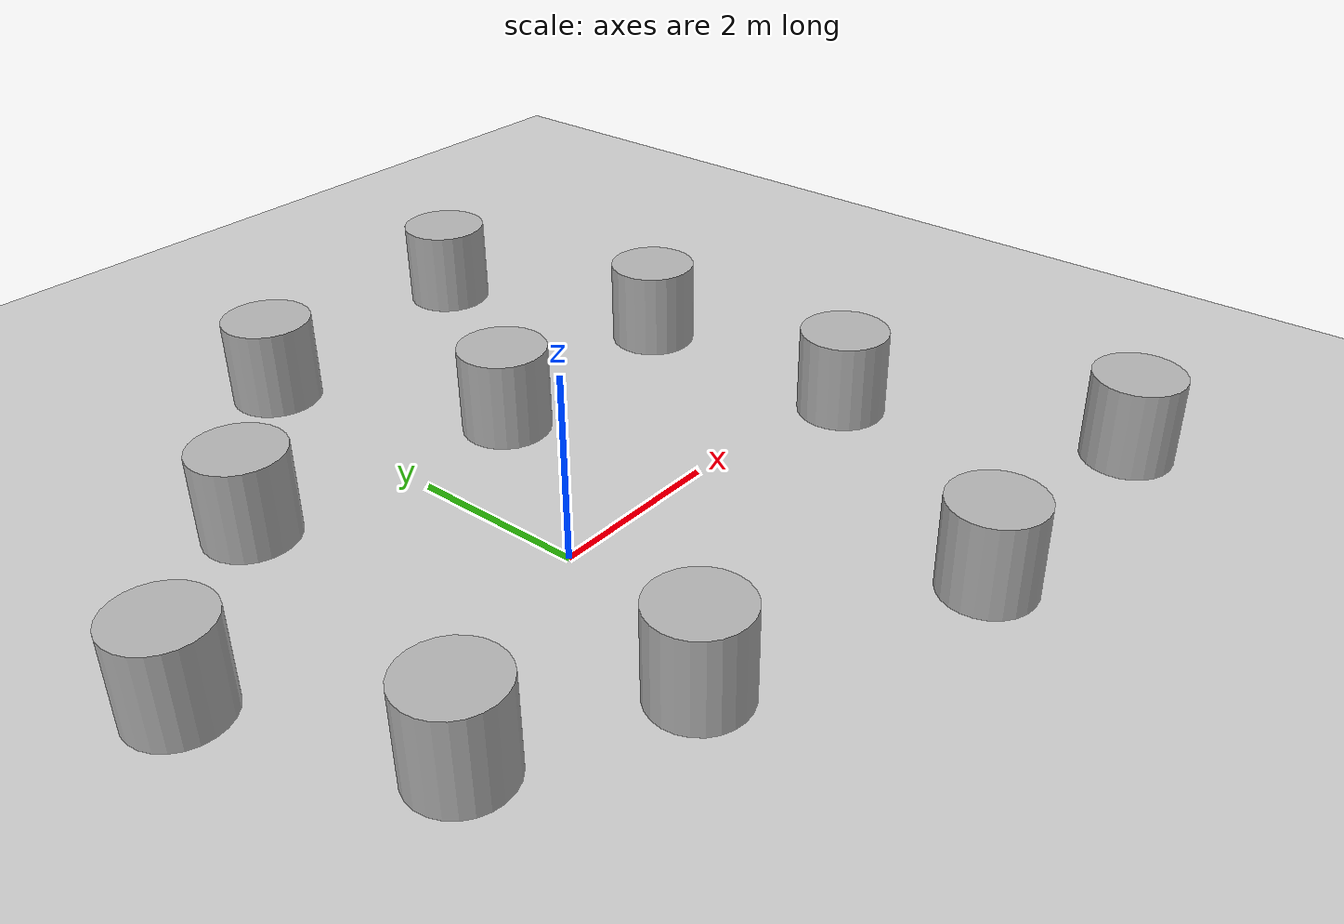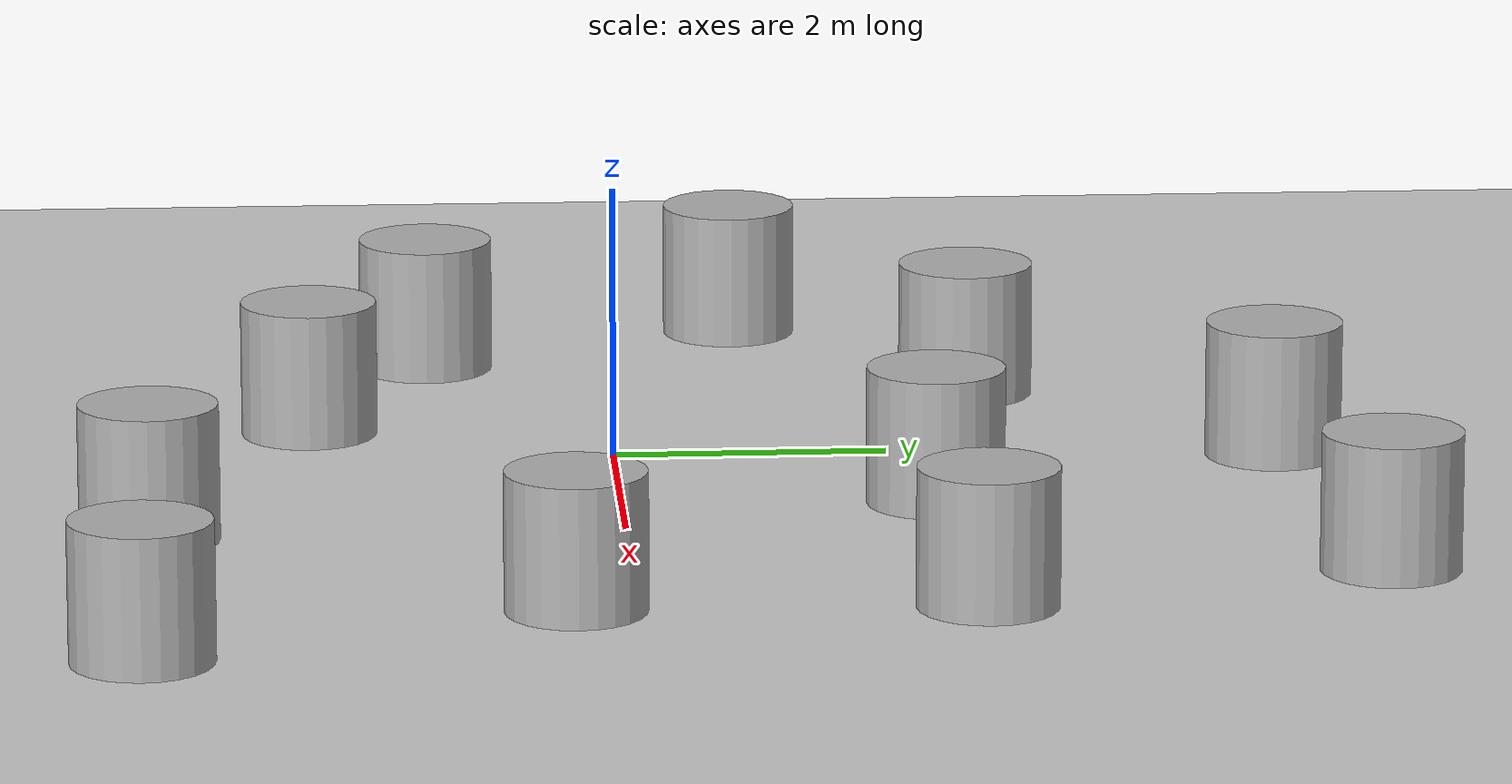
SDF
<sdf version='1.10'>
  <world name='empty'>
    <physics name='1ms' type='ignored'>
      <max_step_size>0.001</max_step_size>
      <real_time_factor>1</real_time_factor>
      <real_time_update_rate>1000</real_time_update_rate>
    </physics>
    <plugin name='gz::sim::systems::Physics' filename='gz-sim-physics-system'/>
    <plugin name='gz::sim::systems::UserCommands' filename='gz-sim-user-commands-system'/>
    <plugin name='gz::sim::systems::SceneBroadcaster' filename='gz-sim-scene-broadcaster-system'/>
    <plugin name='gz::sim::systems::Contact' filename='gz-sim-contact-system'/>
    <plugin
        filename="gz-sim-sensors-system"
        name="gz::sim::systems::Sensors">
        <render_engine>ogre2</render_engine>
    </plugin>
    <gravity>0 0 -9.8000000000000007</gravity>
    <magnetic_field>5.5644999999999998e-06 2.2875799999999999e-05 -4.2388400000000002e-05</magnetic_field>
    <atmosphere type='adiabatic'/>
    <scene>
      <ambient>0.400000006 0.400000006 0.400000006 1</ambient>
      <background>0.699999988 0.699999988 0.699999988 1</background>
      <shadows>true</shadows>
    </scene>
    <model name='ground_plane'>
      <static>true</static>
      <link name='link'>
        <collision name='collision'>
          <geometry>
            <plane>
              <normal>0 0 1</normal>
              <size>100 100</size>
            </plane>
          </geometry>
          <surface>
            <friction>
              <ode/>
            </friction>
            <bounce/>
            <contact/>
          </surface>
        </collision>
        <visual name='visual'>
          <geometry>
            <plane>
              <normal>0 0 1</normal>
              <size>100 100</size>
            </plane>
          </geometry>
          <material>
            <ambient>0.800000012 0.800000012 0.800000012 1</ambient>
            <diffuse>0.800000012 0.800000012 0.800000012 1</diffuse>
            <specular>0.800000012 0.800000012 0.800000012 1</specular>
          </material>
        </visual>
        <pose>0 0 0 0 0 0</pose>
        <inertial>
          <pose>0 0 0 0 0 0</pose>
          <mass>1</mass>
          <inertia>
            <ixx>1</ixx>
            <ixy>0</ixy>
            <ixz>0</ixz>
            <iyy>1</iyy>
            <iyz>0</iyz>
            <izz>1</izz>
          </inertia>
        </inertial>
        <enable_wind>false</enable_wind>
      </link>
      <pose>0 0 0 0 0 0</pose>
      <self_collide>false</self_collide>
    </model>
    <model name='cylinder'>
      <pose>1.4097583559887079 2.2545643272501117 0.49999942638036005 4.9404971558891165e-19 3.2842362917263924e-20 2.3601329363367555e-20</pose>
      <link name='cylinder_link'>
        <inertial>
          <inertia>
            <ixx>0.14580000000000001</ixx>
            <ixy>0</ixy>
            <ixz>0</ixz>
            <iyy>0.14580000000000001</iyy>
            <iyz>0</iyz>
            <izz>0.125</izz>
          </inertia>
          <mass>1</mass>
          <pose>0 0 0 0 0 0</pose>
        </inertial>
        <collision name='cylinder_collision'>
          <geometry>
            <cylinder>
              <radius>0.5</radius>
              <length>1</length>
            </cylinder>
          </geometry>
          <surface>
            <friction>
              <ode/>
            </friction>
            <bounce/>
            <contact/>
          </surface>
        </collision>
        <visual name='cylinder_visual'>
          <geometry>
            <cylinder>
              <radius>0.5</radius>
              <length>1</length>
            </cylinder>
          </geometry>
          <material>
            <ambient>0.300000012 0.300000012 0.300000012 1</ambient>
            <diffuse>0.699999988 0.699999988 0.699999988 1</diffuse>
            <specular>1 1 1 1</specular>
          </material>
        </visual>
        <pose>0 0 0 0 0 0</pose>
        <enable_wind>false</enable_wind>
      </link>
      <static>false</static>
      <self_collide>false</self_collide>
    </model>
    <model name='cylinder_1'>
      <pose>4.0812948099859918 -0.4316160783085512 0.49999899681693183 4.9776349463662298e-19 3.1707919493355166e-20 2.4020687589732746e-20</pose>
      <link name='cylinder_link'>
        <inertial>
          <inertia>
            <ixx>0.14580000000000001</ixx>
            <ixy>0</ixy>
            <ixz>0</ixz>
            <iyy>0.14580000000000001</iyy>
            <iyz>0</iyz>
            <izz>0.125</izz>
          </inertia>
          <mass>1</mass>
        </inertial>
        <collision name='cylinder_collision'>
          <geometry>
            <cylinder>
              <radius>0.5</radius>
              <length>1</length>
            </cylinder>
          </geometry>
          <surface>
            <friction>
              <ode/>
            </friction>
            <bounce/>
            <contact/>
          </surface>
        </collision>
        <visual name='cylinder_visual'>
          <geometry>
            <cylinder>
              <radius>0.5</radius>
              <length>1</length>
            </cylinder>
          </geometry>
          <material>
            <ambient>0.300000012 0.300000012 0.300000012 1</ambient>
            <diffuse>0.699999988 0.699999988 0.699999988 1</diffuse>
            <specular>1 1 1 1</specular>
          </material>
        </visual>
      </link>
      <static>false</static>
      <self_collide>false</self_collide>
    </model>
    <model name='cylinder_2'>
      <pose>2.1077101061374517 -3.3759233407375318 0.49999899681693183 4.9491400319432503e-19 3.166873458593085e-20 2.3245465311377148e-20</pose>
      <link name='cylinder_link'>
        <inertial>
          <inertia>
            <ixx>0.14580000000000001</ixx>
            <ixy>0</ixy>
            <ixz>0</ixz>
            <iyy>0.14580000000000001</iyy>
            <iyz>0</iyz>
            <izz>0.125</izz>
          </inertia>
          <mass>1</mass>
        </inertial>
        <collision name='cylinder_collision'>
          <geometry>
            <cylinder>
              <radius>0.5</radius>
              <length>1</length>
            </cylinder>
          </geometry>
          <surface>
            <friction>
              <ode/>
            </friction>
            <bounce/>
            <contact/>
          </surface>
        </collision>
        <visual name='cylinder_visual'>
          <geometry>
            <cylinder>
              <radius>0.5</radius>
              <length>1</length>
            </cylinder>
          </geometry>
          <material>
            <ambient>0.300000012 0.300000012 0.300000012 1</ambient>
            <diffuse>0.699999988 0.699999988 0.699999988 1</diffuse>
            <specular>1 1 1 1</specular>
          </material>
        </visual>
      </link>
      <static>false</static>
      <self_collide>false</self_collide>
    </model>
    <model name='cylinder_3'>
      <pose>4.1337470431676007 2.407088842674566 0.49999899681693183 4.9343917066988518e-19 3.2061877619412711e-20 2.3516433377538193e-20</pose>
      <link name='cylinder_link'>
        <inertial>
          <inertia>
            <ixx>0.14580000000000001</ixx>
            <ixy>0</ixy>
            <ixz>0</ixz>
            <iyy>0.14580000000000001</iyy>
            <iyz>0</iyz>
            <izz>0.125</izz>
          </inertia>
          <mass>1</mass>
        </inertial>
        <collision name='cylinder_collision'>
          <geometry>
            <cylinder>
              <radius>0.5</radius>
              <length>1</length>
            </cylinder>
          </geometry>
          <surface>
            <friction>
              <ode/>
            </friction>
            <bounce/>
            <contact/>
          </surface>
        </collision>
        <visual name='cylinder_visual'>
          <geometry>
            <cylinder>
              <radius>0.5</radius>
              <length>1</length>
            </cylinder>
          </geometry>
          <material>
            <ambient>0.300000012 0.300000012 0.300000012 1</ambient>
            <diffuse>0.699999988 0.699999988 0.699999988 1</diffuse>
            <specular>1 1 1 1</specular>
          </material>
        </visual>
      </link>
      <static>false</static>
      <self_collide>false</self_collide>
    </model>
    <model name='cylinder_4'>
      <pose>-0.77144733581485259 -2.2162703523065397 0.49999899681693183 4.9720080285983906e-19 3.6419521995058447e-20 2.3895061857896547e-20</pose>
      <link name='cylinder_link'>
        <inertial>
          <inertia>
            <ixx>0.14580000000000001</ixx>
            <ixy>0</ixy>
            <ixz>0</ixz>
            <iyy>0.14580000000000001</iyy>
            <iyz>0</iyz>
            <izz>0.125</izz>
          </inertia>
          <mass>1</mass>
        </inertial>
        <collision name='cylinder_collision'>
          <geometry>
            <cylinder>
              <radius>0.5</radius>
              <length>1</length>
            </cylinder>
          </geometry>
          <surface>
            <friction>
              <ode/>
            </friction>
            <bounce/>
            <contact/>
          </surface>
        </collision>
        <visual name='cylinder_visual'>
          <geometry>
            <cylinder>
              <radius>0.5</radius>
              <length>1</length>
            </cylinder>
          </geometry>
          <material>
            <ambient>0.300000012 0.300000012 0.300000012 1</ambient>
            <diffuse>0.699999988 0.699999988 0.699999988 1</diffuse>
            <specular>1 1 1 1</specular>
          </material>
        </visual>
      </link>
      <static>false</static>
      <self_collide>false</self_collide>
    </model>
    <model name='cylinder_5'>
      <pose>-1.6794210920380568 2.713009257292105 0.49999899681693183 4.9847478699209447e-19 3.8144123835269822e-20 2.3499636734322745e-20</pose>
      <link name='cylinder_link'>
        <inertial>
          <inertia>
            <ixx>0.14580000000000001</ixx>
            <ixy>0</ixy>
            <ixz>0</ixz>
            <iyy>0.14580000000000001</iyy>
            <iyz>0</iyz>
            <izz>0.125</izz>
          </inertia>
          <mass>1</mass>
        </inertial>
        <collision name='cylinder_collision'>
          <geometry>
            <cylinder>
              <radius>0.5</radius>
              <length>1</length>
            </cylinder>
          </geometry>
          <surface>
            <friction>
              <ode/>
            </friction>
            <bounce/>
            <contact/>
          </surface>
        </collision>
        <visual name='cylinder_visual'>
          <geometry>
            <cylinder>
              <radius>0.5</radius>
              <length>1</length>
            </cylinder>
          </geometry>
          <material>
            <ambient>0.300000012 0.300000012 0.300000012 1</ambient>
            <diffuse>0.699999988 0.699999988 0.699999988 1</diffuse>
            <specular>1 1 1 1</specular>
          </material>
        </visual>
      </link>
      <static>false</static>
      <self_collide>false</self_collide>
    </model>
    <model name='cylinder_6'>
      <pose>0.23132474116762136 4.8237613028387845 0.49999899681693183 4.9615736631856206e-19 3.4870860628414806e-20 2.3630326489104077e-20</pose>
      <link name='cylinder_link'>
        <inertial>
          <inertia>
            <ixx>0.14580000000000001</ixx>
            <ixy>0</ixy>
            <ixz>0</ixz>
            <iyy>0.14580000000000001</iyy>
            <iyz>0</iyz>
            <izz>0.125</izz>
          </inertia>
          <mass>1</mass>
        </inertial>
        <collision name='cylinder_collision'>
          <geometry>
            <cylinder>
              <radius>0.5</radius>
              <length>1</length>
            </cylinder>
          </geometry>
          <surface>
            <friction>
              <ode/>
            </friction>
            <bounce/>
            <contact/>
          </surface>
        </collision>
        <visual name='cylinder_visual'>
          <geometry>
            <cylinder>
              <radius>0.5</radius>
              <length>1</length>
            </cylinder>
          </geometry>
          <material>
            <ambient>0.300000012 0.300000012 0.300000012 1</ambient>
            <diffuse>0.699999988 0.699999988 0.699999988 1</diffuse>
            <specular>1 1 1 1</specular>
          </material>
        </visual>
      </link>
      <static>false</static>
      <self_collide>false</self_collide>
    </model>
    <model name='cylinder_7'>
      <pose>-2.6585594167937097 -1.315054147716205 0.49999899681693183 4.9262158160818284e-19 3.5012485188522025e-20 2.2605167035218861e-20</pose>
      <link name='cylinder_link'>
        <inertial>
          <inertia>
            <ixx>0.14580000000000001</ixx>
            <ixy>0</ixy>
            <ixz>0</ixz>
            <iyy>0.14580000000000001</iyy>
            <iyz>0</iyz>
            <izz>0.125</izz>
          </inertia>
          <mass>1</mass>
        </inertial>
        <collision name='cylinder_collision'>
          <geometry>
            <cylinder>
              <radius>0.5</radius>
              <length>1</length>
            </cylinder>
          </geometry>
          <surface>
            <friction>
              <ode/>
            </friction>
            <bounce/>
            <contact/>
          </surface>
        </collision>
        <visual name='cylinder_visual'>
          <geometry>
            <cylinder>
              <radius>0.5</radius>
              <length>1</length>
            </cylinder>
          </geometry>
          <material>
            <ambient>0.300000012 0.300000012 0.300000012 1</ambient>
            <diffuse>0.699999988 0.699999988 0.699999988 1</diffuse>
            <specular>1 1 1 1</specular>
          </material>
        </visual>
      </link>
      <static>false</static>
      <self_collide>false</self_collide>
    </model>
    <model name='cylinder_8'>
      <pose>5.1600856329679479 -3.4035977194989542 0.49999899681693183 4.9500504892319191e-19 2.8126597753188178e-20 2.3408793794174591e-20</pose>
      <link name='cylinder_link'>
        <inertial>
          <inertia>
            <ixx>0.14580000000000001</ixx>
            <ixy>0</ixy>
            <ixz>0</ixz>
            <iyy>0.14580000000000001</iyy>
            <iyz>0</iyz>
            <izz>0.125</izz>
          </inertia>
          <mass>1</mass>
        </inertial>
        <collision name='cylinder_collision'>
          <geometry>
            <cylinder>
              <radius>0.5</radius>
              <length>1</length>
            </cylinder>
          </geometry>
          <surface>
            <friction>
              <ode/>
            </friction>
            <bounce/>
            <contact/>
          </surface>
        </collision>
        <visual name='cylinder_visual'>
          <geometry>
            <cylinder>
              <radius>0.5</radius>
              <length>1</length>
            </cylinder>
          </geometry>
          <material>
            <ambient>0.300000012 0.300000012 0.300000012 1</ambient>
            <diffuse>0.699999988 0.699999988 0.699999988 1</diffuse>
            <specular>1 1 1 1</specular>
          </material>
        </visual>
      </link>
      <static>false</static>
      <self_collide>false</self_collide>
    </model>
    <model name='cylinder_9'>
      <pose>-3.6322871232884739 1.0395804837576712 0.49999899681693183 4.992614063664483e-19 3.4844889520148727e-20 2.2428818240099895e-20</pose>
      <link name='cylinder_link'>
        <inertial>
          <inertia>
            <ixx>0.14580000000000001</ixx>
            <ixy>0</ixy>
            <ixz>0</ixz>
            <iyy>0.14580000000000001</iyy>
            <iyz>0</iyz>
            <izz>0.125</izz>
          </inertia>
          <mass>1</mass>
        </inertial>
        <collision name='cylinder_collision'>
          <geometry>
            <cylinder>
              <radius>0.5</radius>
              <length>1</length>
            </cylinder>
          </geometry>
          <surface>
            <friction>
              <ode/>
            </friction>
            <bounce/>
            <contact/>
          </surface>
        </collision>
        <visual name='cylinder_visual'>
          <geometry>
            <cylinder>
              <radius>0.5</radius>
              <length>1</length>
            </cylinder>
          </geometry>
          <material>
            <ambient>0.300000012 0.300000012 0.300000012 1</ambient>
            <diffuse>0.699999988 0.699999988 0.699999988 1</diffuse>
            <specular>1 1 1 1</specular>
          </material>
        </visual>
      </link>
      <static>false</static>
      <self_collide>false</self_collide>
    </model>
    <model name='cylinder_10'>
      <pose>3.3734532322151525 5.2962036188532382 0.49999899681693183 4.9250009455990321e-19 3.1204553295654357e-20 2.3405060917144235e-20</pose>
      <link name='cylinder_link'>
        <inertial>
          <inertia>
            <ixx>0.14580000000000001</ixx>
            <ixy>0</ixy>
            <ixz>0</ixz>
            <iyy>0.14580000000000001</iyy>
            <iyz>0</iyz>
            <izz>0.125</izz>
          </inertia>
          <mass>1</mass>
        </inertial>
        <collision name='cylinder_collision'>
          <geometry>
            <cylinder>
              <radius>0.5</radius>
              <length>1</length>
            </cylinder>
          </geometry>
          <surface>
            <friction>
              <ode/>
            </friction>
            <bounce/>
            <contact/>
          </surface>
        </collision>
        <visual name='cylinder_visual'>
          <geometry>
            <cylinder>
              <radius>0.5</radius>
              <length>1</length>
            </cylinder>
          </geometry>
          <material>
            <ambient>0.300000012 0.300000012 0.300000012 1</ambient>
            <diffuse>0.699999988 0.699999988 0.699999988 1</diffuse>
            <specular>1 1 1 1</specular>
          </material>
        </visual>
      </link>
      <static>false</static>
      <self_collide>false</self_collide>
    </model>
    <light name='sun' type='directional'>
      <pose>0 0 10 0 0 0</pose>
      <cast_shadows>true</cast_shadows>
      <intensity>1</intensity>
      <direction>-0.5 0.10000000000000001 -0.90000000000000002</direction>
      <diffuse>0.800000012 0.800000012 0.800000012 1</diffuse>
      <specular>0.200000003 0.200000003 0.200000003 1</specular>
      <attenuation>
        <range>1000</range>
        <linear>0.01</linear>
        <constant>0.90000000000000002</constant>
        <quadratic>0.001</quadratic>
      </attenuation>
      <spot>
        <inner_angle>0</inner_angle>
        <outer_angle>0</outer_angle>
        <falloff>0</falloff>
      </spot>
    </light>
  </world>
</sdf>
